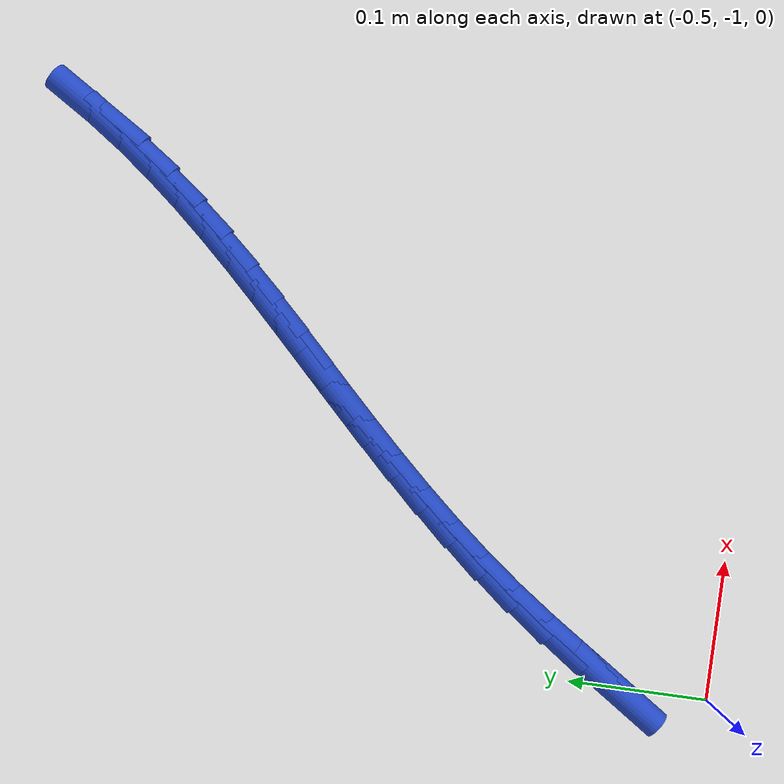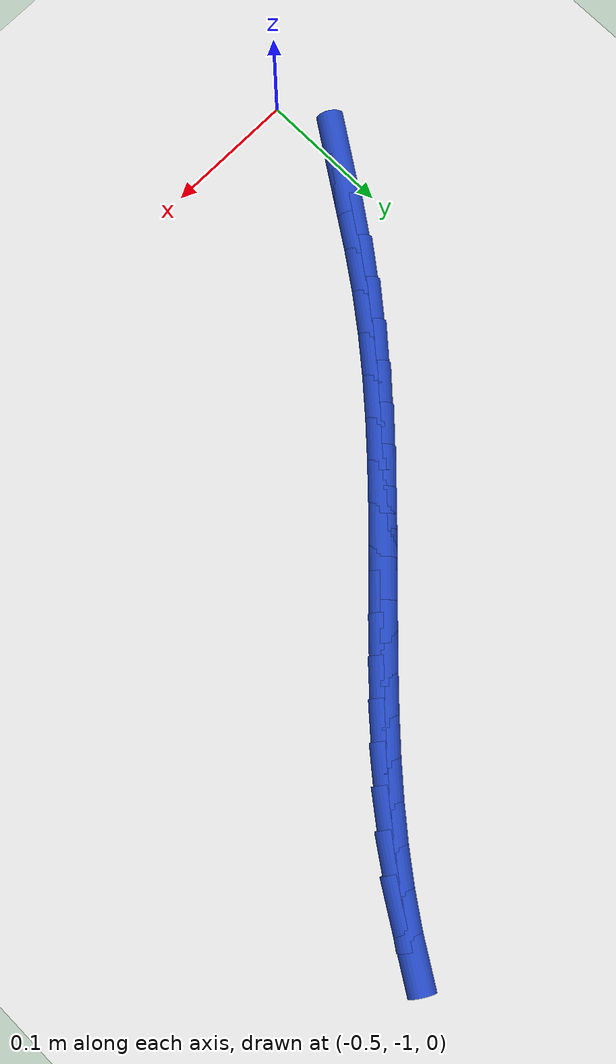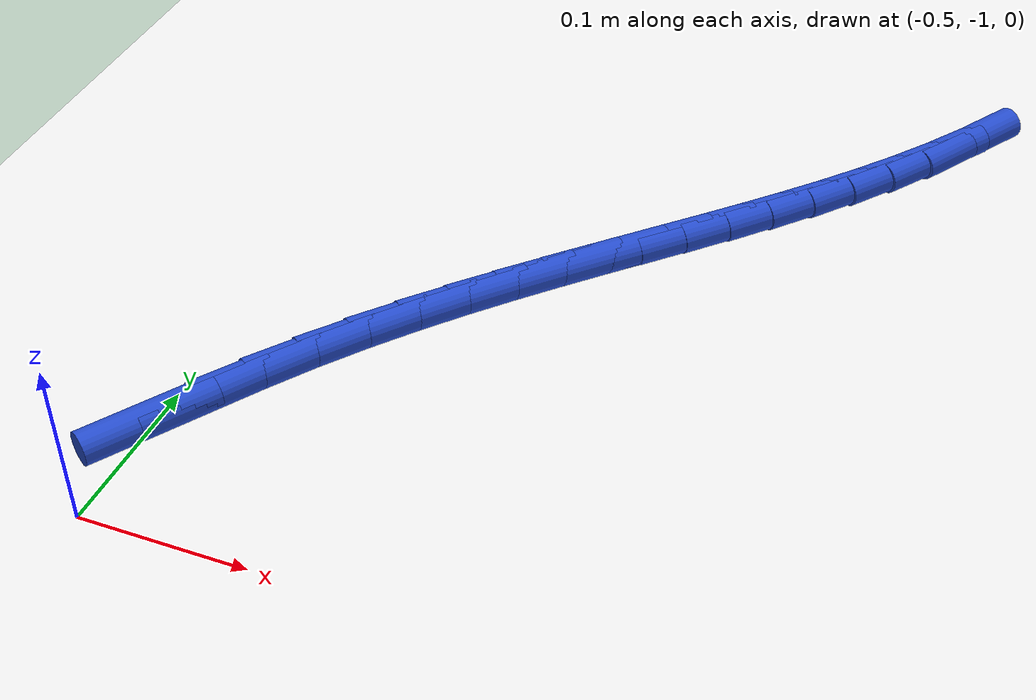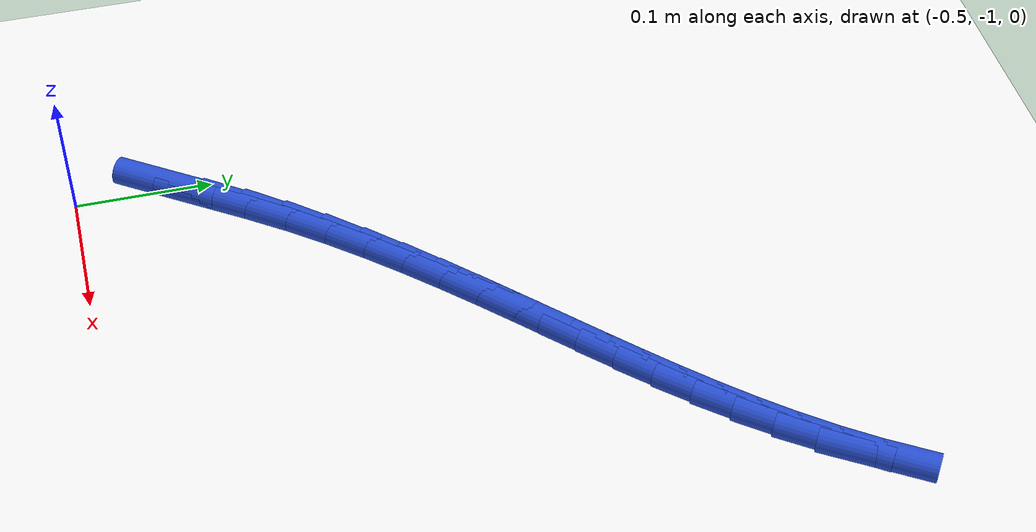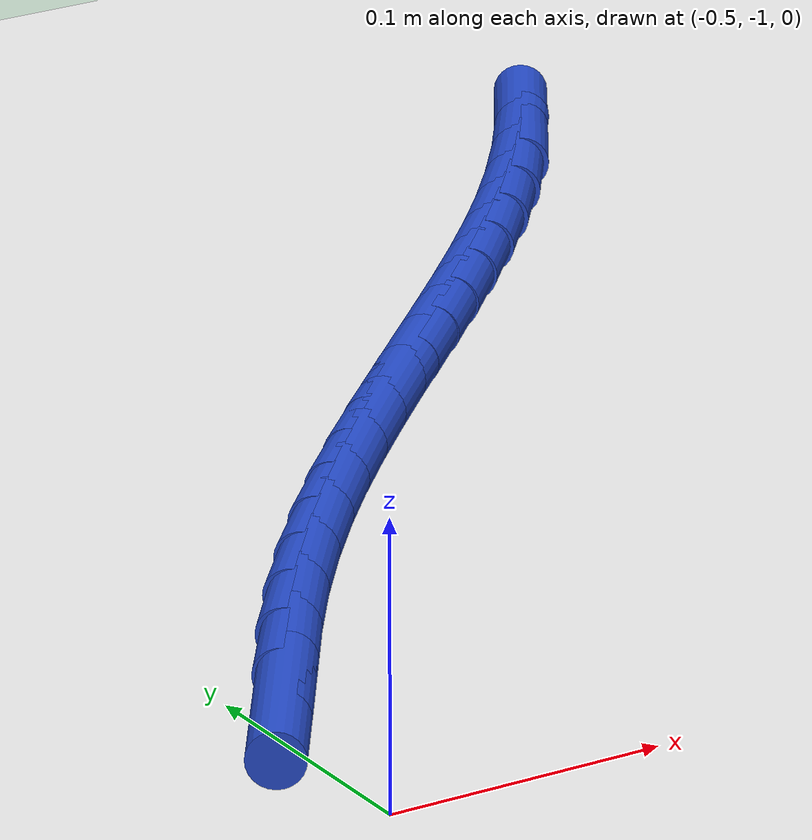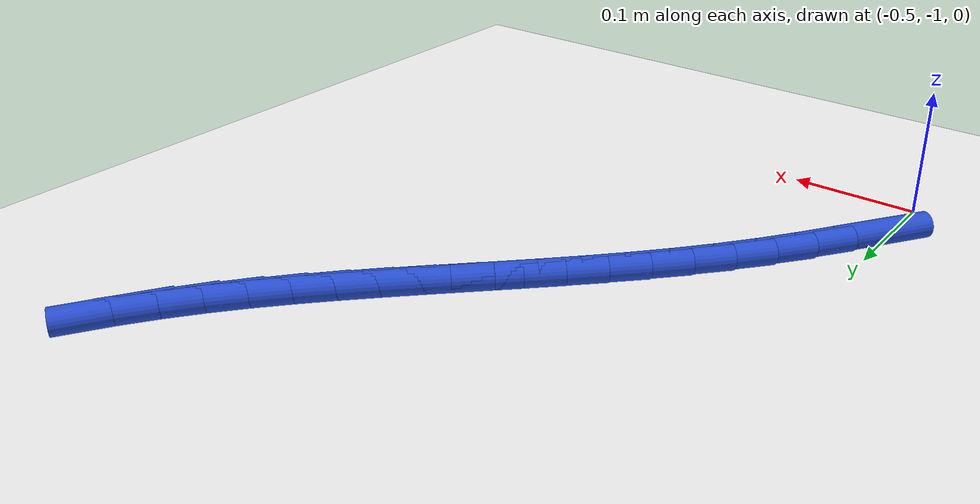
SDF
<sdf version="1.6">
 <world name="default">
  <model name="ground_plane">
   <static>1</static>
   <link name="link">
    <collision name="collision">
     <geometry><plane><normal>0 0 1</normal><size>100 100</size></plane></geometry>
     <surface><friction><ode><mu>100</mu><mu2>50</mu2></ode></friction></surface>
    </collision>
    <visual name="visual">
     <cast_shadows>0</cast_shadows>
     <geometry><plane><normal>0 0 1</normal><size>100 100</size></plane></geometry>
     <material>
      <script><uri>file://media/materials/scripts/gazebo.material</uri><name>Gazebo/WhiteGlow</name></script>
     </material>
    </visual>
   </link>
  </model>
  <model name="line">
   <link name="link_194">
    <pose>-0.49799494888804363 -0.9317079899975976 0.01 0 1.57 0.9794390310193792</pose>
    <collision name="collision">
     <geometry><cylinder><radius>0.01</radius><length>0.08</length></cylinder></geometry>
    </collision>
    <visual name="visual">
     <material>
      <script><name>Gazebo/Blue</name><uri>file://media/materials/scripts/gazebo.material</uri></script>
     </material>
     <geometry><cylinder><radius>0.01</radius><length>0.08</length></cylinder></geometry>
    </visual>
   </link>
   <link name="link_195">
    <pose>-0.4796258571176928 -0.9043536239577317 0.01 0 1.57 0.9806402717538282</pose>
    <collision name="collision">
     <geometry><cylinder><radius>0.01</radius><length>0.08</length></cylinder></geometry>
    </collision>
    <visual name="visual">
     <material>
      <script><name>Gazebo/Blue</name><uri>file://media/materials/scripts/gazebo.material</uri></script>
     </material>
     <geometry><cylinder><radius>0.01</radius><length>0.08</length></cylinder></geometry>
    </visual>
   </link>
   <link name="link_196">
    <pose>-0.4611306059671043 -0.8767397736881655 0.01 0 1.57 0.9519147982217535</pose>
    <collision name="collision">
     <geometry><cylinder><radius>0.01</radius><length>0.08</length></cylinder></geometry>
    </collision>
    <visual name="visual">
     <material>
      <script><name>Gazebo/Blue</name><uri>file://media/materials/scripts/gazebo.material</uri></script>
     </material>
     <geometry><cylinder><radius>0.01</radius><length>0.08</length></cylinder></geometry>
    </visual>
   </link>
   <link name="link_197">
    <pose>-0.4420958061886939 -0.8500138312233876 0.01 0 1.57 0.9124743607206686</pose>
    <collision name="collision">
     <geometry><cylinder><radius>0.01</radius><length>0.08</length></cylinder></geometry>
    </collision>
    <visual name="visual">
     <material>
      <script><name>Gazebo/Blue</name><uri>file://media/materials/scripts/gazebo.material</uri></script>
     </material>
     <geometry><cylinder><radius>0.01</radius><length>0.08</length></cylinder></geometry>
    </visual>
   </link>
   <link name="link_198">
    <pose>-0.42241464193426165 -0.8245668894487119 0.01 0 1.57 0.8771376666351236</pose>
    <collision name="collision">
     <geometry><cylinder><radius>0.01</radius><length>0.08</length></cylinder></geometry>
    </collision>
    <visual name="visual">
     <material>
      <script><name>Gazebo/Blue</name><uri>file://media/materials/scripts/gazebo.material</uri></script>
     </material>
     <geometry><cylinder><radius>0.01</radius><length>0.08</length></cylinder></geometry>
    </visual>
   </link>
   <link name="link_199">
    <pose>-0.40219783298726935 -0.8002533932119069 0.01 0 1.57 0.8467188616264654</pose>
    <collision name="collision">
     <geometry><cylinder><radius>0.01</radius><length>0.08</length></cylinder></geometry>
    </collision>
    <visual name="visual">
     <material>
      <script><name>Gazebo/Blue</name><uri>file://media/materials/scripts/gazebo.material</uri></script>
     </material>
     <geometry><cylinder><radius>0.01</radius><length>0.08</length></cylinder></geometry>
    </visual>
   </link>
   <link name="link_200">
    <pose>-0.3815607248240799 -0.7769163760393023 0.01 0 1.57 0.8216330650327148</pose>
    <collision name="collision">
     <geometry><cylinder><radius>0.01</radius><length>0.08</length></cylinder></geometry>
    </collision>
    <visual name="visual">
     <material>
      <script><name>Gazebo/Blue</name><uri>file://media/materials/scripts/gazebo.material</uri></script>
     </material>
     <geometry><cylinder><radius>0.01</radius><length>0.08</length></cylinder></geometry>
    </visual>
   </link>
   <link name="link_201">
    <pose>-0.36061866292105543 -0.7543988714572266 0.01 0 1.57 0.8022224661277436</pose>
    <collision name="collision">
     <geometry><cylinder><radius>0.01</radius><length>0.08</length></cylinder></geometry>
    </collision>
    <visual name="visual">
     <material>
      <script><name>Gazebo/Blue</name><uri>file://media/materials/scripts/gazebo.material</uri></script>
     </material>
     <geometry><cylinder><radius>0.01</radius><length>0.08</length></cylinder></geometry>
    </visual>
   </link>
   <link name="link_202">
    <pose>-0.3394869927545602 -0.732543912992011 0.01 0 1.57 0.7887689605822694</pose>
    <collision name="collision">
     <geometry><cylinder><radius>0.01</radius><length>0.08</length></cylinder></geometry>
    </collision>
    <visual name="visual">
     <material>
      <script><name>Gazebo/Blue</name><uri>file://media/materials/scripts/gazebo.material</uri></script>
     </material>
     <geometry><cylinder><radius>0.01</radius><length>0.08</length></cylinder></geometry>
    </visual>
   </link>
   <link name="link_203">
    <pose>-0.3182810598009561 -0.7111945341699837 0.01 0 1.57 0.7815067514016047</pose>
    <collision name="collision">
     <geometry><cylinder><radius>0.01</radius><length>0.08</length></cylinder></geometry>
    </collision>
    <visual name="visual">
     <material>
      <script><name>Gazebo/Blue</name><uri>file://media/materials/scripts/gazebo.material</uri></script>
     </material>
     <geometry><cylinder><radius>0.01</radius><length>0.08</length></cylinder></geometry>
    </visual>
   </link>
   <link name="link_204">
    <pose>-0.29711620953660645 -0.690193768517475 0.01 0 1.57 0.7806321817540983</pose>
    <collision name="collision">
     <geometry><cylinder><radius>0.01</radius><length>0.08</length></cylinder></geometry>
    </collision>
    <visual name="visual">
     <material>
      <script><name>Gazebo/Blue</name><uri>file://media/materials/scripts/gazebo.material</uri></script>
     </material>
     <geometry><cylinder><radius>0.01</radius><length>0.08</length></cylinder></geometry>
    </visual>
   </link>
   <link name="link_205">
    <pose>-0.27610778743787373 -0.6693846495608138 0.01 0 1.57 0.7863085290334387</pose>
    <collision name="collision">
     <geometry><cylinder><radius>0.01</radius><length>0.08</length></cylinder></geometry>
    </collision>
    <visual name="visual">
     <material>
      <script><name>Gazebo/Blue</name><uri>file://media/materials/scripts/gazebo.material</uri></script>
     </material>
     <geometry><cylinder><radius>0.01</radius><length>0.08</length></cylinder></geometry>
    </visual>
   </link>
   <link name="link_206">
    <pose>-0.2553711389811205 -0.6486102108263293 0.01 0 1.57 0.7986639388602321</pose>
    <collision name="collision">
     <geometry><cylinder><radius>0.01</radius><length>0.08</length></cylinder></geometry>
    </collision>
    <visual name="visual">
     <material>
      <script><name>Gazebo/Blue</name><uri>file://media/materials/scripts/gazebo.material</uri></script>
     </material>
     <geometry><cylinder><radius>0.01</radius><length>0.08</length></cylinder></geometry>
    </visual>
   </link>
   <link name="link_207">
    <pose>-0.2350216096427106 -0.6277134858403522 0.01 0 1.57 0.8177811445374931</pose>
    <collision name="collision">
     <geometry><cylinder><radius>0.01</radius><length>0.08</length></cylinder></geometry>
    </collision>
    <visual name="visual">
     <material>
      <script><name>Gazebo/Blue</name><uri>file://media/materials/scripts/gazebo.material</uri></script>
     </material>
     <geometry><cylinder><radius>0.01</radius><length>0.08</length></cylinder></geometry>
    </visual>
   </link>
   <link name="link_208">
    <pose>-0.2151745448990064 -0.6065375081292115 0.01 0 1.57 0.8436782585220233</pose>
    <collision name="collision">
     <geometry><cylinder><radius>0.01</radius><length>0.08</length></cylinder></geometry>
    </collision>
    <visual name="visual">
     <material>
      <script><name>Gazebo/Blue</name><uri>file://media/materials/scripts/gazebo.material</uri></script>
     </material>
     <geometry><cylinder><radius>0.01</radius><length>0.08</length></cylinder></geometry>
    </visual>
   </link>
   <link name="link_209">
    <pose>-0.1959452902263707 -0.5849253112192363 0.01 0 1.57 0.8762809806328199</pose>
    <collision name="collision">
     <geometry><cylinder><radius>0.01</radius><length>0.08</length></cylinder></geometry>
    </collision>
    <visual name="visual">
     <material>
      <script><name>Gazebo/Blue</name><uri>file://media/materials/scripts/gazebo.material</uri></script>
     </material>
     <geometry><cylinder><radius>0.01</radius><length>0.08</length></cylinder></geometry>
    </visual>
   </link>
   <link name="link_210">
    <pose>-0.177449191101166 -0.5627199286367559 0.01 0 1.57 0.915388282273796</pose>
    <collision name="collision">
     <geometry><cylinder><radius>0.01</radius><length>0.08</length></cylinder></geometry>
    </collision>
    <visual name="visual">
     <material>
      <script><name>Gazebo/Blue</name><uri>file://media/materials/scripts/gazebo.material</uri></script>
     </material>
     <geometry><cylinder><radius>0.01</radius><length>0.08</length></cylinder></geometry>
    </visual>
   </link>
   <link name="link_211">
    <pose>-0.1598015929997559 -0.5397643939081007 0.01 0 1.57 0.9606306804333408</pose>
    <collision name="collision">
     <geometry><cylinder><radius>0.01</radius><length>0.08</length></cylinder></geometry>
    </collision>
    <visual name="visual">
     <material>
      <script><name>Gazebo/Blue</name><uri>file://media/materials/scripts/gazebo.material</uri></script>
     </material>
     <geometry><cylinder><radius>0.01</radius><length>0.08</length></cylinder></geometry>
    </visual>
   </link>
   <link name="link_212">
    <pose>-0.14311775551026804 -0.5159018912503335 0.01 0 1.57 1.0091917241895008</pose>
    <collision name="collision">
     <geometry><cylinder><radius>0.01</radius><length>0.08</length></cylinder></geometry>
    </collision>
    <visual name="visual">
     <material>
      <script><name>Gazebo/Blue</name><uri>file://media/materials/scripts/gazebo.material</uri></script>
     </material>
     <geometry><cylinder><radius>0.01</radius><length>0.08</length></cylinder></geometry>
    </visual>
   </link>
  </model>
 </world>
</sdf>
